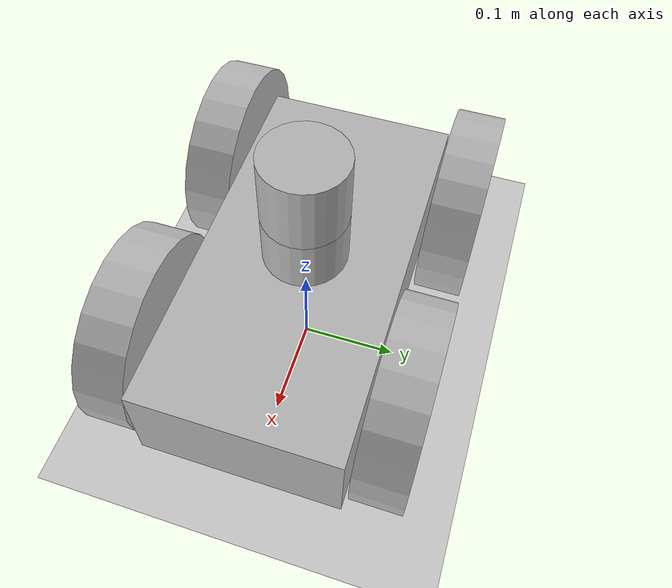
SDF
<?xml version="1.0" ?>
<sdf version="1.5">
    <world name="default">

        <!-- A global light source -->
        <include>
            <uri>model://sun</uri>
        </include>

        <!-- A ground plane -->
        <include>
            <uri>model://ground_plane</uri>
        </include>
        <model name="my_robot">
            <link name='chassis'>
                <pose>0 0 .1 0 0 0</pose>

                <collision name='collision'>
                    <geometry>
                        <box>
                            <size>.4 .2 .1</size>
                        </box>
                    </geometry>
                </collision>

                <visual name='visual'>
                    <geometry>
                        <box>
                            <size>.4 .2 .1</size>
                        </box>
                    </geometry>
                </visual>
            </link>

            <link name="base_cylinder">

                <!-- Offset the base by half the lenght of the cylinder -->
                <pose>0 0 0.179335 0 0 0</pose>
                <collision name="base_cylinder_collision">
                    <geometry>
                        <cylinder>
                            <!-- Radius and length provided by Velodyne -->
                            <radius>.04267</radius>
                            <length>.05867</length>
                        </cylinder>
                    </geometry>
                </collision>

                <!-- The visual is mostly a copy of the collision -->
                <visual name="base_cylinder_visual">
                    <geometry>
                        <cylinder>
                            <radius>.04267</radius>
                            <length>.05867</length>
                        </cylinder>
                    </geometry>
                </visual>
            </link>

            <joint type="fixed" name="base_cylinder_joint">
                <pose>0 0 -0.029335 0 0 0</pose>
                <child>base_cylinder</child>
                <parent>chassis</parent>
            </joint>

            <link name="top">
                <sensor type="ray" name="sensor">

                    <pose>0 0 -0.004645 1.5707 0 0</pose>

                    <!-- Enable visualization to see the rays in the GUI -->
                    <visualize>true</visualize>

                    <!-- Set the update rate of the sensor -->
                    <update_rate>30</update_rate>
                    <ray>

                        <!-- The scan element contains the horizontal and vertical beams.
       We are leaving out the vertical beams for this tutorial. -->
                        <scan>

                            <!-- The horizontal beams -->
                            <horizontal>
                                <!-- The velodyne has 32 beams(samples) -->
                                <samples>32</samples>

                                <!-- Resolution is multiplied by samples to determine number of
           simulated beams vs interpolated beams. See: http://sdformat.org/spec?ver=1.6&elem=sensor#horizontal_resolution
           -->
                                <resolution>1</resolution>

                                <!-- Minimum angle in radians -->
                                <min_angle>-0.53529248</min_angle>

                                <!-- Maximum angle in radians -->
                                <max_angle>0.18622663</max_angle>
                            </horizontal>
                        </scan>

                        <!-- Range defines characteristics of an individual beam -->
                        <range>

                            <!-- Minimum distance of the beam -->
                            <min>0.05</min>

                            <!-- Maximum distance of the beam -->
                            <max>70</max>

                            <!-- Linear resolution of the beam -->
                            <resolution>0.02</resolution>
                        </range>
                    </ray>
                </sensor>
                <pose>0 0 0.245455 0 0 0</pose>
                <inertial>
                    <mass>0.1</mass>
                    <inertia>
                        <ixx>0.000090623</ixx>
                        <iyy>0.000090623</iyy>
                        <izz>0.000091036</izz>
                        <ixy>0</ixy>
                        <ixz>0</ixz>
                        <iyz>0</iyz>
                    </inertia>
                </inertial>
                <collision name="top_collision">
                    <geometry>
                        <cylinder>
                            <!-- Radius and length provided by Velodyne -->
                            <radius>0.04267</radius>
                            <length>0.07357</length>
                        </cylinder>
                    </geometry>
                </collision>

                <!-- The visual is mostly a copy of the collision -->
                <visual name="top_visual">
                    <geometry>
                        <cylinder>
                            <radius>0.04267</radius>
                            <length>0.07357</length>
                        </cylinder>
                    </geometry>
                </visual>
            </link>
            <joint type="revolute" name="top_cylinder_joint">

                <!-- Position the joint at the bottom of the top link -->
                <pose>0 0 -0.036785 0 0 0</pose>

                <!-- Use the base link as the parent of the joint -->
                <parent>base_cylinder</parent>

                <!-- Use the top link as the child of the joint -->
                <child>top</child>

                <!-- The axis defines the joint's degree of freedom -->
                <axis>

                    <!-- Revolve around the z-axis -->
                    <xyz>0 0 1</xyz>

                    <!-- Limit refers to the range of motion of the joint -->
                    <limit>

                        <!-- Use a very large number to indicate a continuous revolution -->
                        <lower>-10000000000000000</lower>
                        <upper>10000000000000000</upper>
                    </limit>
                </axis>
            </joint>

            <link name="left_front_wheel">
                <pose>0.1 0.13 0.1 0 1.5707 1.5707</pose>
                <collision name="left_front_wheel_collision">
                    <geometry>
                        <cylinder>
                            <radius>.1</radius>
                            <length>.05</length>
                        </cylinder>
                    </geometry>
                </collision>
                <visual name="left_front_wheel_visual">
                    <geometry>
                        <cylinder>
                            <radius>.1</radius>
                            <length>.05</length>
                        </cylinder>
                    </geometry>
                </visual>
            </link>
            <link name="right_front_wheel">
                <pose>0.1 -0.13 0.1 0 1.5707 1.5707</pose>
                <collision name="right_front_wheel_collision">
                    <geometry>
                        <cylinder>
                            <radius>.1</radius>
                            <length>.05</length>
                        </cylinder>
                    </geometry>
                </collision>
                <visual name="right_front_wheel_visual">
                    <geometry>
                        <cylinder>
                            <radius>.1</radius>
                            <length>.05</length>
                        </cylinder>
                    </geometry>
                </visual>
            </link>
            <joint type="revolute" name="left_front_wheel_hinge">
                <pose>0 0 -0.03 0 0 0</pose>
                <child>left_front_wheel</child>
                <parent>chassis</parent>
                <axis>
                    <xyz>0 0 1</xyz>
                </axis>
            </joint>

            <joint type="revolute" name="right_front_wheel_hinge">
                <pose>0 0 0.03 0 0 0</pose>
                <child>right_front_wheel</child>
                <parent>chassis</parent>
                <axis>
                    <xyz>0 0 1</xyz>
                </axis>
            </joint>

            <link name="left_back_wheel">
                <pose>-0.15 0.13 0.1 0 1.5707 1.5707</pose>
                <collision name="left_back_wheel_collision">
                    <geometry>
                        <cylinder>
                            <radius>.1</radius>
                            <length>.05</length>
                        </cylinder>
                    </geometry>
                </collision>
                <visual name="left_back_wheel_visual">
                    <geometry>
                        <cylinder>
                            <radius>.1</radius>
                            <length>.05</length>
                        </cylinder>
                    </geometry>
                </visual>
            </link>
            <link name="right_back_wheel">
                <pose>-0.15 -0.13 0.1 0 1.5707 1.5707</pose>
                <collision name="right_front_wheel_collision">
                    <geometry>
                        <cylinder>
                            <radius>.1</radius>
                            <length>.05</length>
                        </cylinder>
                    </geometry>
                </collision>
                <visual name="right_back_wheel_visual">
                    <geometry>
                        <cylinder>
                            <radius>.1</radius>
                            <length>.05</length>
                        </cylinder>
                    </geometry>
                </visual>
            </link>
            <joint type="revolute" name="left_back_wheel_hinge">
                <pose>0 0 -0.03 0 0 0</pose>
                <child>left_back_wheel</child>
                <parent>chassis</parent>
                <axis>
                    <xyz>0 0 1</xyz>
                </axis>
            </joint>

            <joint type="revolute" name="right_back_wheel_hinge">
                <pose>0 0 0.03 0 0 0</pose>
                <child>right_back_wheel</child>
                <parent>chassis</parent>
                <axis>
                    <xyz>0 0 1</xyz>
                </axis>
            </joint>

            <plugin name="lidar_control" filename="liblidar_plugin.so">
            </plugin>
        </model>
    </world>
</sdf>
